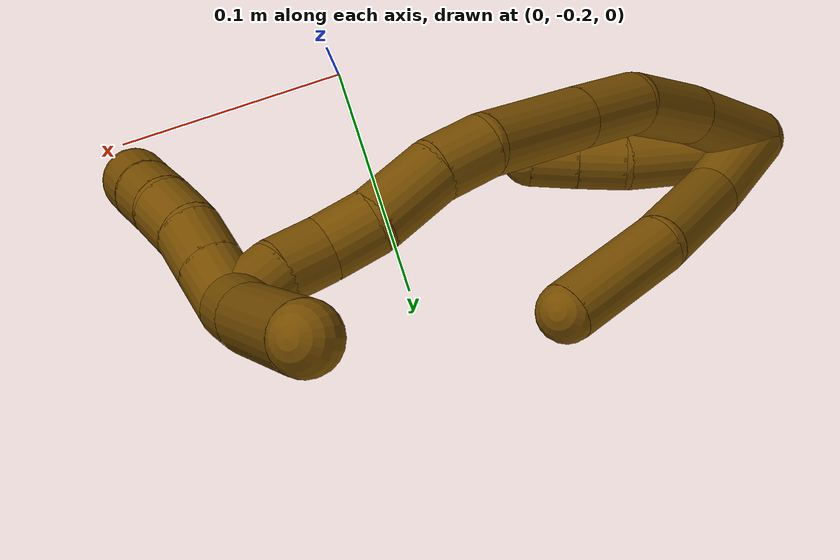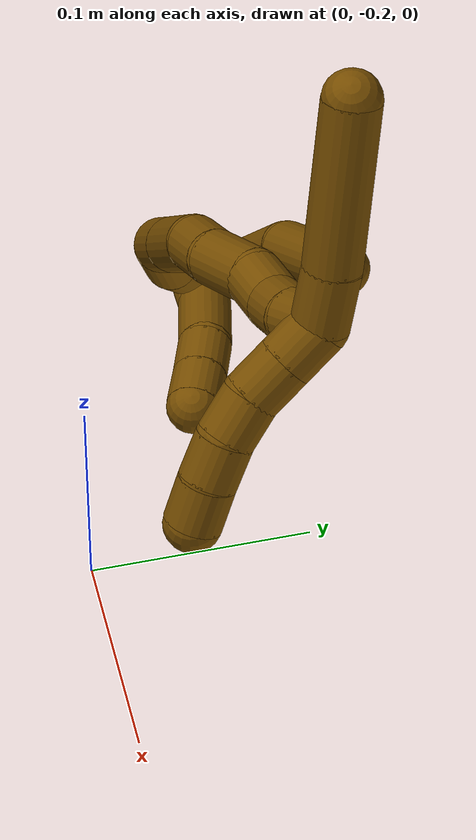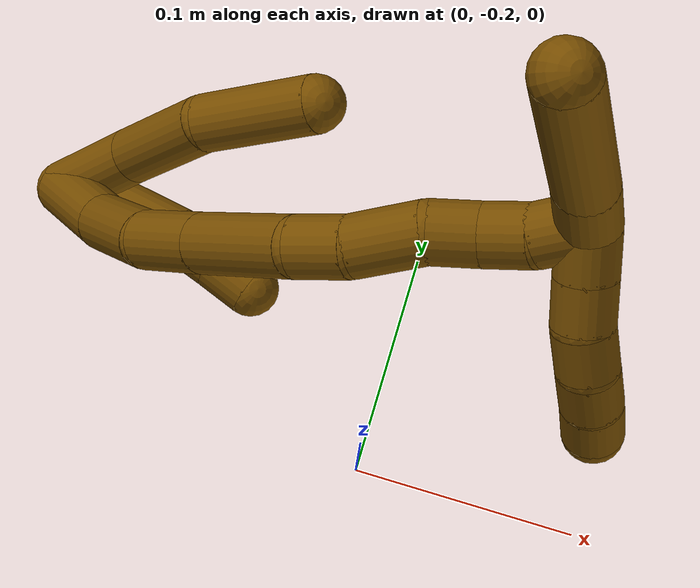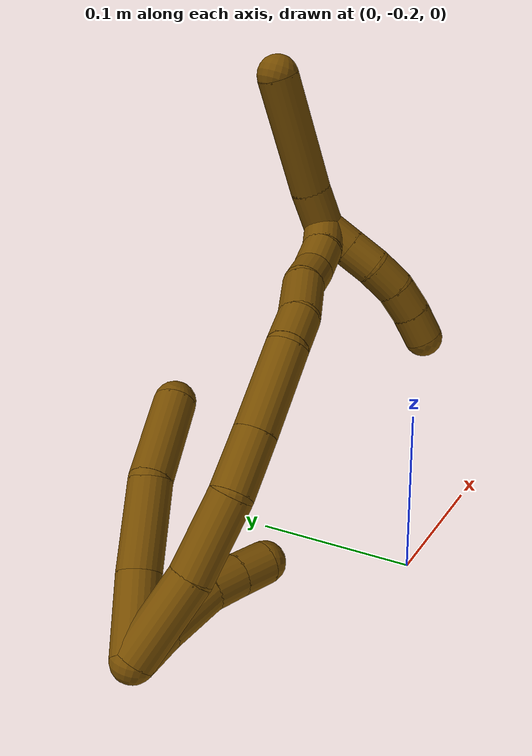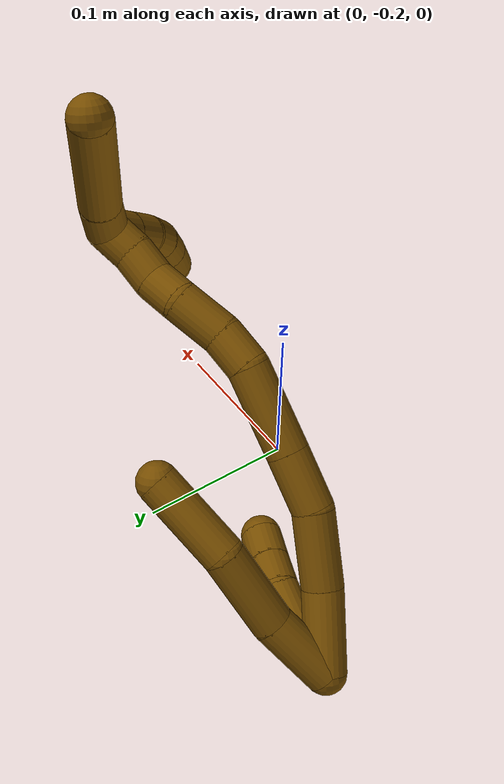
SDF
<sdf version="1.7">
 <world name="default">
  <model name="12">
   <static>0</static>
   <link name="12">
    <collision name="collision-cylinder-e_1_2_8">
     <pose>0.009699 0.010649 0.017175 -0.555036 0.44746 -0.129457</pose>
     <geometry><cylinder><radius>0.0125</radius><length>0.04483</length></cylinder></geometry>
     <surface>
      <friction><ode><mu>1.16</mu><mu2>1.16</mu2><slip1>0</slip1><slip2>0</slip2></ode></friction>
      <contact><ode><kp>1e+06</kp><kd>1</kd><max_vel>0</max_vel><min_depth>0.001</min_depth></ode></contact>
     </surface>
    </collision>
    <visual name="visual-cylinder-e_1_2_8">
     <pose>0.009699 0.010649 0.017175 -0.555036 0.44746 -0.129457</pose>
     <geometry><cylinder><radius>0.0125</radius><length>0.04483</length></cylinder></geometry>
     <material><ambient>0.466667 0.301961 0 1</ambient></material>
    </visual>
    <collision name="collision-cylinder-e_2_8_9">
     <pose>0.027686 0.030418 0.056621 -0.388631 0.331697 -0.065859</pose>
     <geometry><cylinder><radius>0.0125</radius><length>0.050907</length></cylinder></geometry>
     <surface>
      <friction><ode><mu>1.16</mu><mu2>1.16</mu2><slip1>0</slip1><slip2>0</slip2></ode></friction>
      <contact><ode><kp>1e+06</kp><kd>1</kd><max_vel>0</max_vel><min_depth>0.001</min_depth></ode></contact>
     </surface>
    </collision>
    <visual name="visual-cylinder-e_2_8_9">
     <pose>0.027686 0.030418 0.056621 -0.388631 0.331697 -0.065859</pose>
     <geometry><cylinder><radius>0.0125</radius><length>0.050907</length></cylinder></geometry>
     <material><ambient>0.466667 0.301961 0 1</ambient></material>
    </visual>
    <collision name="collision-cylinder-e_3_9_6">
     <pose>0.052862 0.048527 0.09813 -0.43715 0.671849 -0.154803</pose>
     <geometry><cylinder><radius>0.0125</radius><length>0.054263</length></cylinder></geometry>
     <surface>
      <friction><ode><mu>1.16</mu><mu2>1.16</mu2><slip1>0</slip1><slip2>0</slip2></ode></friction>
      <contact><ode><kp>1e+06</kp><kd>1</kd><max_vel>0</max_vel><min_depth>0.001</min_depth></ode></contact>
     </surface>
    </collision>
    <visual name="visual-cylinder-e_3_9_6">
     <pose>0.052862 0.048527 0.09813 -0.43715 0.671849 -0.154803</pose>
     <geometry><cylinder><radius>0.0125</radius><length>0.054263</length></cylinder></geometry>
     <material><ambient>0.466667 0.301961 0 1</ambient></material>
    </visual>
    <collision name="collision-cylinder-e_1_2_10">
     <pose>0.011035 0.000131 0.005116 -0.025667 1.13657 -0.01639</pose>
     <geometry><cylinder><radius>0.0125</radius><length>0.024328</length></cylinder></geometry>
     <surface>
      <friction><ode><mu>1.16</mu><mu2>1.16</mu2><slip1>0</slip1><slip2>0</slip2></ode></friction>
      <contact><ode><kp>1e+06</kp><kd>1</kd><max_vel>0</max_vel><min_depth>0.001</min_depth></ode></contact>
     </surface>
    </collision>
    <visual name="visual-cylinder-e_1_2_10">
     <pose>0.011035 0.000131 0.005116 -0.025667 1.13657 -0.01639</pose>
     <geometry><cylinder><radius>0.0125</radius><length>0.024328</length></cylinder></geometry>
     <material><ambient>0.466667 0.301961 0 1</ambient></material>
    </visual>
    <collision name="collision-cylinder-e_2_10_11">
     <pose>0.036499 -0.002702 0.019915 0.297075 0.95882 0.155271</pose>
     <geometry><cylinder><radius>0.0125</radius><length>0.035255</length></cylinder></geometry>
     <surface>
      <friction><ode><mu>1.16</mu><mu2>1.16</mu2><slip1>0</slip1><slip2>0</slip2></ode></friction>
      <contact><ode><kp>1e+06</kp><kd>1</kd><max_vel>0</max_vel><min_depth>0.001</min_depth></ode></contact>
     </surface>
    </collision>
    <visual name="visual-cylinder-e_2_10_11">
     <pose>0.036499 -0.002702 0.019915 0.297075 0.95882 0.155271</pose>
     <geometry><cylinder><radius>0.0125</radius><length>0.035255</length></cylinder></geometry>
     <material><ambient>0.466667 0.301961 0 1</ambient></material>
    </visual>
    <collision name="collision-cylinder-e_3_11_12">
     <pose>0.059667 -0.008897 0.033493 0.692463 1.04592 0.410114</pose>
     <geometry><cylinder><radius>0.0125</radius><length>0.020196</length></cylinder></geometry>
     <surface>
      <friction><ode><mu>1.16</mu><mu2>1.16</mu2><slip1>0</slip1><slip2>0</slip2></ode></friction>
      <contact><ode><kp>1e+06</kp><kd>1</kd><max_vel>0</max_vel><min_depth>0.001</min_depth></ode></contact>
     </surface>
    </collision>
    <visual name="visual-cylinder-e_3_11_12">
     <pose>0.059667 -0.008897 0.033493 0.692463 1.04592 0.410114</pose>
     <geometry><cylinder><radius>0.0125</radius><length>0.020196</length></cylinder></geometry>
     <material><ambient>0.466667 0.301961 0 1</ambient></material>
    </visual>
    <collision name="collision-cylinder-e_4_12_5">
     <pose>0.077092 -0.015613 0.041209 0.739484 1.03382 0.433708</pose>
     <geometry><cylinder><radius>0.0125</radius><length>0.02022</length></cylinder></geometry>
     <surface>
      <friction><ode><mu>1.16</mu><mu2>1.16</mu2><slip1>0</slip1><slip2>0</slip2></ode></friction>
      <contact><ode><kp>1e+06</kp><kd>1</kd><max_vel>0</max_vel><min_depth>0.001</min_depth></ode></contact>
     </surface>
    </collision>
    <visual name="visual-cylinder-e_4_12_5">
     <pose>0.077092 -0.015613 0.041209 0.739484 1.03382 0.433708</pose>
     <geometry><cylinder><radius>0.0125</radius><length>0.02022</length></cylinder></geometry>
     <material><ambient>0.466667 0.301961 0 1</ambient></material>
    </visual>
    <collision name="collision-cylinder-e_1_2_13">
     <pose>0.007124 -0.005679 0.023367 0.238399 0.288015 0.034732</pose>
     <geometry><cylinder><radius>0.0125</radius><length>0.05016</length></cylinder></geometry>
     <surface>
      <friction><ode><mu>1.16</mu><mu2>1.16</mu2><slip1>0</slip1><slip2>0</slip2></ode></friction>
      <contact><ode><kp>1e+06</kp><kd>1</kd><max_vel>0</max_vel><min_depth>0.001</min_depth></ode></contact>
     </surface>
    </collision>
    <visual name="visual-cylinder-e_1_2_13">
     <pose>0.007124 -0.005679 0.023367 0.238399 0.288015 0.034732</pose>
     <geometry><cylinder><radius>0.0125</radius><length>0.05016</length></cylinder></geometry>
     <material><ambient>0.466667 0.301961 0 1</ambient></material>
    </visual>
    <collision name="collision-cylinder-e_2_13_14">
     <pose>0.019593 -0.013329 0.069314 0.08709 0.231585 0.010136</pose>
     <geometry><cylinder><radius>0.0125</radius><length>0.046576</length></cylinder></geometry>
     <surface>
      <friction><ode><mu>1.16</mu><mu2>1.16</mu2><slip1>0</slip1><slip2>0</slip2></ode></friction>
      <contact><ode><kp>1e+06</kp><kd>1</kd><max_vel>0</max_vel><min_depth>0.001</min_depth></ode></contact>
     </surface>
    </collision>
    <visual name="visual-cylinder-e_2_13_14">
     <pose>0.019593 -0.013329 0.069314 0.08709 0.231585 0.010136</pose>
     <geometry><cylinder><radius>0.0125</radius><length>0.046576</length></cylinder></geometry>
     <material><ambient>0.466667 0.301961 0 1</ambient></material>
    </visual>
    <collision name="collision-cylinder-e_3_14_15">
     <pose>0.032824 -0.01328 0.107546 -0.128355 0.463421 -0.030324</pose>
     <geometry><cylinder><radius>0.0125</radius><length>0.035284</length></cylinder></geometry>
     <surface>
      <friction><ode><mu>1.16</mu><mu2>1.16</mu2><slip1>0</slip1><slip2>0</slip2></ode></friction>
      <contact><ode><kp>1e+06</kp><kd>1</kd><max_vel>0</max_vel><min_depth>0.001</min_depth></ode></contact>
     </surface>
    </collision>
    <visual name="visual-cylinder-e_3_14_15">
     <pose>0.032824 -0.01328 0.107546 -0.128355 0.463421 -0.030324</pose>
     <geometry><cylinder><radius>0.0125</radius><length>0.035284</length></cylinder></geometry>
     <material><ambient>0.466667 0.301961 0 1</ambient></material>
    </visual>
    <collision name="collision-cylinder-e_4_15_16">
     <pose>0.052473 -0.007862 0.146718 -0.143482 0.459609 -0.03362</pose>
     <geometry><cylinder><radius>0.0125</radius><length>0.053033</length></cylinder></geometry>
     <surface>
      <friction><ode><mu>1.16</mu><mu2>1.16</mu2><slip1>0</slip1><slip2>0</slip2></ode></friction>
      <contact><ode><kp>1e+06</kp><kd>1</kd><max_vel>0</max_vel><min_depth>0.001</min_depth></ode></contact>
     </surface>
    </collision>
    <visual name="visual-cylinder-e_4_15_16">
     <pose>0.052473 -0.007862 0.146718 -0.143482 0.459609 -0.03362</pose>
     <geometry><cylinder><radius>0.0125</radius><length>0.053033</length></cylinder></geometry>
     <material><ambient>0.466667 0.301961 0 1</ambient></material>
    </visual>
    <collision name="collision-cylinder-e_5_16_17">
     <pose>0.072287 -0.001773 0.178235 -0.324638 0.762032 -0.131014</pose>
     <geometry><cylinder><radius>0.0125</radius><length>0.023325</length></cylinder></geometry>
     <surface>
      <friction><ode><mu>1.16</mu><mu2>1.16</mu2><slip1>0</slip1><slip2>0</slip2></ode></friction>
      <contact><ode><kp>1e+06</kp><kd>1</kd><max_vel>0</max_vel><min_depth>0.001</min_depth></ode></contact>
     </surface>
    </collision>
    <visual name="visual-cylinder-e_5_16_17">
     <pose>0.072287 -0.001773 0.178235 -0.324638 0.762032 -0.131014</pose>
     <geometry><cylinder><radius>0.0125</radius><length>0.023325</length></cylinder></geometry>
     <material><ambient>0.466667 0.301961 0 1</ambient></material>
    </visual>
    <collision name="collision-cylinder-e_6_17_18">
     <pose>0.090913 0.007316 0.195195 -0.619899 0.765079 -0.256317</pose>
     <geometry><cylinder><radius>0.0125</radius><length>0.030536</length></cylinder></geometry>
     <surface>
      <friction><ode><mu>1.16</mu><mu2>1.16</mu2><slip1>0</slip1><slip2>0</slip2></ode></friction>
      <contact><ode><kp>1e+06</kp><kd>1</kd><max_vel>0</max_vel><min_depth>0.001</min_depth></ode></contact>
     </surface>
    </collision>
    <visual name="visual-cylinder-e_6_17_18">
     <pose>0.090913 0.007316 0.195195 -0.619899 0.765079 -0.256317</pose>
     <geometry><cylinder><radius>0.0125</radius><length>0.030536</length></cylinder></geometry>
     <material><ambient>0.466667 0.301961 0 1</ambient></material>
    </visual>
    <collision name="collision-cylinder-e_7_18_19">
     <pose>0.110378 0.016081 0.208706 -0.479892 1.04771 -0.280816</pose>
     <geometry><cylinder><radius>0.0125</radius><length>0.020524</length></cylinder></geometry>
     <surface>
      <friction><ode><mu>1.16</mu><mu2>1.16</mu2><slip1>0</slip1><slip2>0</slip2></ode></friction>
      <contact><ode><kp>1e+06</kp><kd>1</kd><max_vel>0</max_vel><min_depth>0.001</min_depth></ode></contact>
     </surface>
    </collision>
    <visual name="visual-cylinder-e_7_18_19">
     <pose>0.110378 0.016081 0.208706 -0.479892 1.04771 -0.280816</pose>
     <geometry><cylinder><radius>0.0125</radius><length>0.020524</length></cylinder></geometry>
     <material><ambient>0.466667 0.301961 0 1</ambient></material>
    </visual>
    <collision name="collision-cylinder-e_8_19_20">
     <pose>0.126272 0.020585 0.220305 -0.294239 0.760119 -0.118261</pose>
     <geometry><cylinder><radius>0.0125</radius><length>0.020333</length></cylinder></geometry>
     <surface>
      <friction><ode><mu>1.16</mu><mu2>1.16</mu2><slip1>0</slip1><slip2>0</slip2></ode></friction>
      <contact><ode><kp>1e+06</kp><kd>1</kd><max_vel>0</max_vel><min_depth>0.001</min_depth></ode></contact>
     </surface>
    </collision>
    <visual name="visual-cylinder-e_8_19_20">
     <pose>0.126272 0.020585 0.220305 -0.294239 0.760119 -0.118261</pose>
     <geometry><cylinder><radius>0.0125</radius><length>0.020333</length></cylinder></geometry>
     <material><ambient>0.466667 0.301961 0 1</ambient></material>
    </visual>
    <collision name="collision-cylinder-e_9_20_1">
     <pose>0.139608 0.026928 0.23403 -0.562353 0.676308 -0.202445</pose>
     <geometry><cylinder><radius>0.0125</radius><length>0.020229</length></cylinder></geometry>
     <surface>
      <friction><ode><mu>1.16</mu><mu2>1.16</mu2><slip1>0</slip1><slip2>0</slip2></ode></friction>
      <contact><ode><kp>1e+06</kp><kd>1</kd><max_vel>0</max_vel><min_depth>0.001</min_depth></ode></contact>
     </surface>
    </collision>
    <visual name="visual-cylinder-e_9_20_1">
     <pose>0.139608 0.026928 0.23403 -0.562353 0.676308 -0.202445</pose>
     <geometry><cylinder><radius>0.0125</radius><length>0.020229</length></cylinder></geometry>
     <material><ambient>0.466667 0.301961 0 1</ambient></material>
    </visual>
    <collision name="collision-cylinder-e_1_1_21">
     <pose>0.138723 0.035985 0.250677 -0.452745 -0.576865 0.136463</pose>
     <geometry><cylinder><radius>0.0125</radius><length>0.026463</length></cylinder></geometry>
     <surface>
      <friction><ode><mu>1.16</mu><mu2>1.16</mu2><slip1>0</slip1><slip2>0</slip2></ode></friction>
      <contact><ode><kp>1e+06</kp><kd>1</kd><max_vel>0</max_vel><min_depth>0.001</min_depth></ode></contact>
     </surface>
    </collision>
    <visual name="visual-cylinder-e_1_1_21">
     <pose>0.138723 0.035985 0.250677 -0.452745 -0.576865 0.136463</pose>
     <geometry><cylinder><radius>0.0125</radius><length>0.026463</length></cylinder></geometry>
     <material><ambient>0.466667 0.301961 0 1</ambient></material>
    </visual>
    <collision name="collision-cylinder-e_2_21_4">
     <pose>0.11052 0.051398 0.288933 -0.357401 -0.607453 0.113105</pose>
     <geometry><cylinder><radius>0.0125</radius><length>0.073537</length></cylinder></geometry>
     <surface>
      <friction><ode><mu>1.16</mu><mu2>1.16</mu2><slip1>0</slip1><slip2>0</slip2></ode></friction>
      <contact><ode><kp>1e+06</kp><kd>1</kd><max_vel>0</max_vel><min_depth>0.001</min_depth></ode></contact>
     </surface>
    </collision>
    <visual name="visual-cylinder-e_2_21_4">
     <pose>0.11052 0.051398 0.288933 -0.357401 -0.607453 0.113105</pose>
     <geometry><cylinder><radius>0.0125</radius><length>0.073537</length></cylinder></geometry>
     <material><ambient>0.466667 0.301961 0 1</ambient></material>
    </visual>
    <collision name="collision-cylinder-e_1_1_22">
     <pose>0.149933 0.022766 0.23696 1.99153 0.410905 0.622215</pose>
     <geometry><cylinder><radius>0.0125</radius><length>0.02</length></cylinder></geometry>
     <surface>
      <friction><ode><mu>1.16</mu><mu2>1.16</mu2><slip1>0</slip1><slip2>0</slip2></ode></friction>
      <contact><ode><kp>1e+06</kp><kd>1</kd><max_vel>0</max_vel><min_depth>0.001</min_depth></ode></contact>
     </surface>
    </collision>
    <visual name="visual-cylinder-e_1_1_22">
     <pose>0.149933 0.022766 0.23696 1.99153 0.410905 0.622215</pose>
     <geometry><cylinder><radius>0.0125</radius><length>0.02</length></cylinder></geometry>
     <material><ambient>0.466667 0.301961 0 1</ambient></material>
    </visual>
    <collision name="collision-cylinder-e_2_22_23">
     <pose>0.157899 0.006014 0.229481 1.98982 0.408318 0.617355</pose>
     <geometry><cylinder><radius>0.0125</radius><length>0.02</length></cylinder></geometry>
     <surface>
      <friction><ode><mu>1.16</mu><mu2>1.16</mu2><slip1>0</slip1><slip2>0</slip2></ode></friction>
      <contact><ode><kp>1e+06</kp><kd>1</kd><max_vel>0</max_vel><min_depth>0.001</min_depth></ode></contact>
     </surface>
    </collision>
    <visual name="visual-cylinder-e_2_22_23">
     <pose>0.157899 0.006014 0.229481 1.98982 0.408318 0.617355</pose>
     <geometry><cylinder><radius>0.0125</radius><length>0.02</length></cylinder></geometry>
     <material><ambient>0.466667 0.301961 0 1</ambient></material>
    </visual>
    <collision name="collision-cylinder-e_3_23_24">
     <pose>0.167407 -0.009412 0.221303 2.1338 0.586845 1.00259</pose>
     <geometry><cylinder><radius>0.0125</radius><length>0.02</length></cylinder></geometry>
     <surface>
      <friction><ode><mu>1.16</mu><mu2>1.16</mu2><slip1>0</slip1><slip2>0</slip2></ode></friction>
      <contact><ode><kp>1e+06</kp><kd>1</kd><max_vel>0</max_vel><min_depth>0.001</min_depth></ode></contact>
     </surface>
    </collision>
    <visual name="visual-cylinder-e_3_23_24">
     <pose>0.167407 -0.009412 0.221303 2.1338 0.586845 1.00259</pose>
     <geometry><cylinder><radius>0.0125</radius><length>0.02</length></cylinder></geometry>
     <material><ambient>0.466667 0.301961 0 1</ambient></material>
    </visual>
    <collision name="collision-cylinder-e_4_24_25">
     <pose>0.178623 -0.022003 0.21078 2.40162 0.603978 1.35338</pose>
     <geometry><cylinder><radius>0.0125</radius><length>0.02</length></cylinder></geometry>
     <surface>
      <friction><ode><mu>1.16</mu><mu2>1.16</mu2><slip1>0</slip1><slip2>0</slip2></ode></friction>
      <contact><ode><kp>1e+06</kp><kd>1</kd><max_vel>0</max_vel><min_depth>0.001</min_depth></ode></contact>
     </surface>
    </collision>
    <visual name="visual-cylinder-e_4_24_25">
     <pose>0.178623 -0.022003 0.21078 2.40162 0.603978 1.35338</pose>
     <geometry><cylinder><radius>0.0125</radius><length>0.02</length></cylinder></geometry>
     <material><ambient>0.466667 0.301961 0 1</ambient></material>
    </visual>
    <collision name="collision-cylinder-e_5_25_3">
     <pose>0.189616 -0.032463 0.197798 2.52334 0.560233 1.4665</pose>
     <geometry><cylinder><radius>0.0125</radius><length>0.02</length></cylinder></geometry>
     <surface>
      <friction><ode><mu>1.16</mu><mu2>1.16</mu2><slip1>0</slip1><slip2>0</slip2></ode></friction>
      <contact><ode><kp>1e+06</kp><kd>1</kd><max_vel>0</max_vel><min_depth>0.001</min_depth></ode></contact>
     </surface>
    </collision>
    <visual name="visual-cylinder-e_5_25_3">
     <pose>0.189616 -0.032463 0.197798 2.52334 0.560233 1.4665</pose>
     <geometry><cylinder><radius>0.0125</radius><length>0.02</length></cylinder></geometry>
     <material><ambient>0.466667 0.301961 0 1</ambient></material>
    </visual>
    <collision name="collision-sphere-3">
     <pose>0.19493 -0.037373 0.190895 0 -0 0</pose>
     <geometry><sphere><radius>0.0125</radius></sphere></geometry>
     <surface>
      <friction><ode><mu>1.16</mu><mu2>1.16</mu2><slip1>0</slip1><slip2>0</slip2></ode></friction>
      <contact><ode><kp>1e+06</kp><kd>1</kd><max_vel>0</max_vel><min_depth>0.001</min_depth></ode></contact>
     </surface>
    </collision>
    <visual name="visual-sphere-3">
     <pose>0.19493 -0.037373 0.190895 0 -0 0</pose>
     <geometry><sphere><radius>0.0125</radius></sphere></geometry>
     <material><ambient>0.466667 0.301961 0 1</ambient></material>
    </visual>
    <collision name="collision-sphere-25">
     <pose>0.184302 -0.027553 0.204702 0 -0 0</pose>
     <geometry><sphere><radius>0.0125</radius></sphere></geometry>
     <surface>
      <friction><ode><mu>1.16</mu><mu2>1.16</mu2><slip1>0</slip1><slip2>0</slip2></ode></friction>
      <contact><ode><kp>1e+06</kp><kd>1</kd><max_vel>0</max_vel><min_depth>0.001</min_depth></ode></contact>
     </surface>
    </collision>
    <visual name="visual-sphere-25">
     <pose>0.184302 -0.027553 0.204702 0 -0 0</pose>
     <geometry><sphere><radius>0.0125</radius></sphere></geometry>
     <material><ambient>0.466667 0.301961 0 1</ambient></material>
    </visual>
    <collision name="collision-sphere-24">
     <pose>0.172944 -0.016454 0.216858 0 -0 0</pose>
     <geometry><sphere><radius>0.0125</radius></sphere></geometry>
     <surface>
      <friction><ode><mu>1.16</mu><mu2>1.16</mu2><slip1>0</slip1><slip2>0</slip2></ode></friction>
      <contact><ode><kp>1e+06</kp><kd>1</kd><max_vel>0</max_vel><min_depth>0.001</min_depth></ode></contact>
     </surface>
    </collision>
    <visual name="visual-sphere-24">
     <pose>0.172944 -0.016454 0.216858 0 -0 0</pose>
     <geometry><sphere><radius>0.0125</radius></sphere></geometry>
     <material><ambient>0.466667 0.301961 0 1</ambient></material>
    </visual>
    <collision name="collision-sphere-23">
     <pose>0.161869 -0.00237 0.225747 0 -0 0</pose>
     <geometry><sphere><radius>0.0125</radius></sphere></geometry>
     <surface>
      <friction><ode><mu>1.16</mu><mu2>1.16</mu2><slip1>0</slip1><slip2>0</slip2></ode></friction>
      <contact><ode><kp>1e+06</kp><kd>1</kd><max_vel>0</max_vel><min_depth>0.001</min_depth></ode></contact>
     </surface>
    </collision>
    <visual name="visual-sphere-23">
     <pose>0.161869 -0.00237 0.225747 0 -0 0</pose>
     <geometry><sphere><radius>0.0125</radius></sphere></geometry>
     <material><ambient>0.466667 0.301961 0 1</ambient></material>
    </visual>
    <collision name="collision-sphere-22">
     <pose>0.153928 0.014398 0.233215 0 -0 0</pose>
     <geometry><sphere><radius>0.0125</radius></sphere></geometry>
     <surface>
      <friction><ode><mu>1.16</mu><mu2>1.16</mu2><slip1>0</slip1><slip2>0</slip2></ode></friction>
      <contact><ode><kp>1e+06</kp><kd>1</kd><max_vel>0</max_vel><min_depth>0.001</min_depth></ode></contact>
     </surface>
    </collision>
    <visual name="visual-sphere-22">
     <pose>0.153928 0.014398 0.233215 0 -0 0</pose>
     <geometry><sphere><radius>0.0125</radius></sphere></geometry>
     <material><ambient>0.466667 0.301961 0 1</ambient></material>
    </visual>
    <collision name="collision-sphere-4">
     <pose>0.089533 0.06196 0.317216 0 -0 0</pose>
     <geometry><sphere><radius>0.0125</radius></sphere></geometry>
     <surface>
      <friction><ode><mu>1.16</mu><mu2>1.16</mu2><slip1>0</slip1><slip2>0</slip2></ode></friction>
      <contact><ode><kp>1e+06</kp><kd>1</kd><max_vel>0</max_vel><min_depth>0.001</min_depth></ode></contact>
     </surface>
    </collision>
    <visual name="visual-sphere-4">
     <pose>0.089533 0.06196 0.317216 0 -0 0</pose>
     <geometry><sphere><radius>0.0125</radius></sphere></geometry>
     <material><ambient>0.466667 0.301961 0 1</ambient></material>
    </visual>
    <collision name="collision-sphere-21">
     <pose>0.131506 0.040836 0.26065 0 -0 0</pose>
     <geometry><sphere><radius>0.0125</radius></sphere></geometry>
     <surface>
      <friction><ode><mu>1.16</mu><mu2>1.16</mu2><slip1>0</slip1><slip2>0</slip2></ode></friction>
      <contact><ode><kp>1e+06</kp><kd>1</kd><max_vel>0</max_vel><min_depth>0.001</min_depth></ode></contact>
     </surface>
    </collision>
    <visual name="visual-sphere-21">
     <pose>0.131506 0.040836 0.26065 0 -0 0</pose>
     <geometry><sphere><radius>0.0125</radius></sphere></geometry>
     <material><ambient>0.466667 0.301961 0 1</ambient></material>
    </visual>
    <collision name="collision-sphere-1">
     <pose>0.145939 0.031134 0.240704 0 -0 0</pose>
     <geometry><sphere><radius>0.0125</radius></sphere></geometry>
     <surface>
      <friction><ode><mu>1.16</mu><mu2>1.16</mu2><slip1>0</slip1><slip2>0</slip2></ode></friction>
      <contact><ode><kp>1e+06</kp><kd>1</kd><max_vel>0</max_vel><min_depth>0.001</min_depth></ode></contact>
     </surface>
    </collision>
    <visual name="visual-sphere-1">
     <pose>0.145939 0.031134 0.240704 0 -0 0</pose>
     <geometry><sphere><radius>0.0125</radius></sphere></geometry>
     <material><ambient>0.466667 0.301961 0 1</ambient></material>
    </visual>
    <collision name="collision-sphere-11">
     <pose>0.050928 -0.005666 0.029598 0 -0 0</pose>
     <geometry><sphere><radius>0.0125</radius></sphere></geometry>
     <surface>
      <friction><ode><mu>1.16</mu><mu2>1.16</mu2><slip1>0</slip1><slip2>0</slip2></ode></friction>
      <contact><ode><kp>1e+06</kp><kd>1</kd><max_vel>0</max_vel><min_depth>0.001</min_depth></ode></contact>
     </surface>
    </collision>
    <visual name="visual-sphere-11">
     <pose>0.050928 -0.005666 0.029598 0 -0 0</pose>
     <geometry><sphere><radius>0.0125</radius></sphere></geometry>
     <material><ambient>0.466667 0.301961 0 1</ambient></material>
    </visual>
    <collision name="collision-sphere-10">
     <pose>0.022071 0.000263 0.010232 0 -0 0</pose>
     <geometry><sphere><radius>0.0125</radius></sphere></geometry>
     <surface>
      <friction><ode><mu>1.16</mu><mu2>1.16</mu2><slip1>0</slip1><slip2>0</slip2></ode></friction>
      <contact><ode><kp>1e+06</kp><kd>1</kd><max_vel>0</max_vel><min_depth>0.001</min_depth></ode></contact>
     </surface>
    </collision>
    <visual name="visual-sphere-10">
     <pose>0.022071 0.000263 0.010232 0 -0 0</pose>
     <geometry><sphere><radius>0.0125</radius></sphere></geometry>
     <material><ambient>0.466667 0.301961 0 1</ambient></material>
    </visual>
    <collision name="collision-sphere-6">
     <pose>0.06975 0.057517 0.117368 0 -0 0</pose>
     <geometry><sphere><radius>0.0125</radius></sphere></geometry>
     <surface>
      <friction><ode><mu>1.16</mu><mu2>1.16</mu2><slip1>0</slip1><slip2>0</slip2></ode></friction>
      <contact><ode><kp>1e+06</kp><kd>1</kd><max_vel>0</max_vel><min_depth>0.001</min_depth></ode></contact>
     </surface>
    </collision>
    <visual name="visual-sphere-6">
     <pose>0.06975 0.057517 0.117368 0 -0 0</pose>
     <geometry><sphere><radius>0.0125</radius></sphere></geometry>
     <material><ambient>0.466667 0.301961 0 1</ambient></material>
    </visual>
    <collision name="collision-sphere-9">
     <pose>0.035975 0.039537 0.078892 0 -0 0</pose>
     <geometry><sphere><radius>0.0125</radius></sphere></geometry>
     <surface>
      <friction><ode><mu>1.16</mu><mu2>1.16</mu2><slip1>0</slip1><slip2>0</slip2></ode></friction>
      <contact><ode><kp>1e+06</kp><kd>1</kd><max_vel>0</max_vel><min_depth>0.001</min_depth></ode></contact>
     </surface>
    </collision>
    <visual name="visual-sphere-9">
     <pose>0.035975 0.039537 0.078892 0 -0 0</pose>
     <geometry><sphere><radius>0.0125</radius></sphere></geometry>
     <material><ambient>0.466667 0.301961 0 1</ambient></material>
    </visual>
    <collision name="collision-sphere-2">
     <geometry><sphere><radius>0.0125</radius></sphere></geometry>
     <surface>
      <friction><ode><mu>1.16</mu><mu2>1.16</mu2><slip1>0</slip1><slip2>0</slip2></ode></friction>
      <contact><ode><kp>1e+06</kp><kd>1</kd><max_vel>0</max_vel><min_depth>0.001</min_depth></ode></contact>
     </surface>
    </collision>
    <visual name="visual-sphere-2">
     <geometry><sphere><radius>0.0125</radius></sphere></geometry>
     <material><ambient>0.466667 0.301961 0 1</ambient></material>
    </visual>
    <collision name="collision-sphere-19">
     <pose>0.119268 0.018448 0.213254 0 -0 0</pose>
     <geometry><sphere><radius>0.0125</radius></sphere></geometry>
     <surface>
      <friction><ode><mu>1.16</mu><mu2>1.16</mu2><slip1>0</slip1><slip2>0</slip2></ode></friction>
      <contact><ode><kp>1e+06</kp><kd>1</kd><max_vel>0</max_vel><min_depth>0.001</min_depth></ode></contact>
     </surface>
    </collision>
    <visual name="visual-sphere-19">
     <pose>0.119268 0.018448 0.213254 0 -0 0</pose>
     <geometry><sphere><radius>0.0125</radius></sphere></geometry>
     <material><ambient>0.466667 0.301961 0 1</ambient></material>
    </visual>
    <collision name="collision-sphere-8">
     <pose>0.019397 0.021299 0.034349 0 -0 0</pose>
     <geometry><sphere><radius>0.0125</radius></sphere></geometry>
     <surface>
      <friction><ode><mu>1.16</mu><mu2>1.16</mu2><slip1>0</slip1><slip2>0</slip2></ode></friction>
      <contact><ode><kp>1e+06</kp><kd>1</kd><max_vel>0</max_vel><min_depth>0.001</min_depth></ode></contact>
     </surface>
    </collision>
    <visual name="visual-sphere-8">
     <pose>0.019397 0.021299 0.034349 0 -0 0</pose>
     <geometry><sphere><radius>0.0125</radius></sphere></geometry>
     <material><ambient>0.466667 0.301961 0 1</ambient></material>
    </visual>
    <collision name="collision-sphere-12">
     <pose>0.068405 -0.012127 0.037388 0 -0 0</pose>
     <geometry><sphere><radius>0.0125</radius></sphere></geometry>
     <surface>
      <friction><ode><mu>1.16</mu><mu2>1.16</mu2><slip1>0</slip1><slip2>0</slip2></ode></friction>
      <contact><ode><kp>1e+06</kp><kd>1</kd><max_vel>0</max_vel><min_depth>0.001</min_depth></ode></contact>
     </surface>
    </collision>
    <visual name="visual-sphere-12">
     <pose>0.068405 -0.012127 0.037388 0 -0 0</pose>
     <geometry><sphere><radius>0.0125</radius></sphere></geometry>
     <material><ambient>0.466667 0.301961 0 1</ambient></material>
    </visual>
    <collision name="collision-sphere-5">
     <pose>0.085779 -0.019098 0.04503 0 -0 0</pose>
     <geometry><sphere><radius>0.0125</radius></sphere></geometry>
     <surface>
      <friction><ode><mu>1.16</mu><mu2>1.16</mu2><slip1>0</slip1><slip2>0</slip2></ode></friction>
      <contact><ode><kp>1e+06</kp><kd>1</kd><max_vel>0</max_vel><min_depth>0.001</min_depth></ode></contact>
     </surface>
    </collision>
    <visual name="visual-sphere-5">
     <pose>0.085779 -0.019098 0.04503 0 -0 0</pose>
     <geometry><sphere><radius>0.0125</radius></sphere></geometry>
     <material><ambient>0.466667 0.301961 0 1</ambient></material>
    </visual>
    <collision name="collision-sphere-13">
     <pose>0.014248 -0.011357 0.046733 0 -0 0</pose>
     <geometry><sphere><radius>0.0125</radius></sphere></geometry>
     <surface>
      <friction><ode><mu>1.16</mu><mu2>1.16</mu2><slip1>0</slip1><slip2>0</slip2></ode></friction>
      <contact><ode><kp>1e+06</kp><kd>1</kd><max_vel>0</max_vel><min_depth>0.001</min_depth></ode></contact>
     </surface>
    </collision>
    <visual name="visual-sphere-13">
     <pose>0.014248 -0.011357 0.046733 0 -0 0</pose>
     <geometry><sphere><radius>0.0125</radius></sphere></geometry>
     <material><ambient>0.466667 0.301961 0 1</ambient></material>
    </visual>
    <collision name="collision-sphere-14">
     <pose>0.024938 -0.0153 0.091895 0 -0 0</pose>
     <geometry><sphere><radius>0.0125</radius></sphere></geometry>
     <surface>
      <friction><ode><mu>1.16</mu><mu2>1.16</mu2><slip1>0</slip1><slip2>0</slip2></ode></friction>
      <contact><ode><kp>1e+06</kp><kd>1</kd><max_vel>0</max_vel><min_depth>0.001</min_depth></ode></contact>
     </surface>
    </collision>
    <visual name="visual-sphere-14">
     <pose>0.024938 -0.0153 0.091895 0 -0 0</pose>
     <geometry><sphere><radius>0.0125</radius></sphere></geometry>
     <material><ambient>0.466667 0.301961 0 1</ambient></material>
    </visual>
    <collision name="collision-sphere-15">
     <pose>0.04071 -0.01126 0.123197 0 -0 0</pose>
     <geometry><sphere><radius>0.0125</radius></sphere></geometry>
     <surface>
      <friction><ode><mu>1.16</mu><mu2>1.16</mu2><slip1>0</slip1><slip2>0</slip2></ode></friction>
      <contact><ode><kp>1e+06</kp><kd>1</kd><max_vel>0</max_vel><min_depth>0.001</min_depth></ode></contact>
     </surface>
    </collision>
    <visual name="visual-sphere-15">
     <pose>0.04071 -0.01126 0.123197 0 -0 0</pose>
     <geometry><sphere><radius>0.0125</radius></sphere></geometry>
     <material><ambient>0.466667 0.301961 0 1</ambient></material>
    </visual>
    <collision name="collision-sphere-16">
     <pose>0.064236 -0.004464 0.170238 0 -0 0</pose>
     <geometry><sphere><radius>0.0125</radius></sphere></geometry>
     <surface>
      <friction><ode><mu>1.16</mu><mu2>1.16</mu2><slip1>0</slip1><slip2>0</slip2></ode></friction>
      <contact><ode><kp>1e+06</kp><kd>1</kd><max_vel>0</max_vel><min_depth>0.001</min_depth></ode></contact>
     </surface>
    </collision>
    <visual name="visual-sphere-16">
     <pose>0.064236 -0.004464 0.170238 0 -0 0</pose>
     <geometry><sphere><radius>0.0125</radius></sphere></geometry>
     <material><ambient>0.466667 0.301961 0 1</ambient></material>
    </visual>
    <collision name="collision-sphere-17">
     <pose>0.080339 0.000918 0.186231 0 -0 0</pose>
     <geometry><sphere><radius>0.0125</radius></sphere></geometry>
     <surface>
      <friction><ode><mu>1.16</mu><mu2>1.16</mu2><slip1>0</slip1><slip2>0</slip2></ode></friction>
      <contact><ode><kp>1e+06</kp><kd>1</kd><max_vel>0</max_vel><min_depth>0.001</min_depth></ode></contact>
     </surface>
    </collision>
    <visual name="visual-sphere-17">
     <pose>0.080339 0.000918 0.186231 0 -0 0</pose>
     <geometry><sphere><radius>0.0125</radius></sphere></geometry>
     <material><ambient>0.466667 0.301961 0 1</ambient></material>
    </visual>
    <collision name="collision-sphere-18">
     <pose>0.101488 0.013715 0.204159 0 -0 0</pose>
     <geometry><sphere><radius>0.0125</radius></sphere></geometry>
     <surface>
      <friction><ode><mu>1.16</mu><mu2>1.16</mu2><slip1>0</slip1><slip2>0</slip2></ode></friction>
      <contact><ode><kp>1e+06</kp><kd>1</kd><max_vel>0</max_vel><min_depth>0.001</min_depth></ode></contact>
     </surface>
    </collision>
    <visual name="visual-sphere-18">
     <pose>0.101488 0.013715 0.204159 0 -0 0</pose>
     <geometry><sphere><radius>0.0125</radius></sphere></geometry>
     <material><ambient>0.466667 0.301961 0 1</ambient></material>
    </visual>
    <collision name="collision-sphere-20">
     <pose>0.133277 0.022722 0.227357 0 -0 0</pose>
     <geometry><sphere><radius>0.0125</radius></sphere></geometry>
     <surface>
      <friction><ode><mu>1.16</mu><mu2>1.16</mu2><slip1>0</slip1><slip2>0</slip2></ode></friction>
      <contact><ode><kp>1e+06</kp><kd>1</kd><max_vel>0</max_vel><min_depth>0.001</min_depth></ode></contact>
     </surface>
    </collision>
    <visual name="visual-sphere-20">
     <pose>0.133277 0.022722 0.227357 0 -0 0</pose>
     <geometry><sphere><radius>0.0125</radius></sphere></geometry>
     <material><ambient>0.466667 0.301961 0 1</ambient></material>
    </visual>
    <inertial>
     <pose>0.073373 0.010381 0.134282 0 -0 0</pose>
     <mass>0.75</mass>
     <inertia>
      <ixx>0.000146</ixx>
      <ixy>0</ixy>
      <ixz>0</ixz>
      <iyy>0.00014</iyy>
      <iyz>0</iyz>
      <izz>-1.7e-05</izz>
     </inertia>
    </inertial>
   </link>
   <pose>-0.163295 -0.116389 0.012117 0.151003 0.349077 0.040452</pose>
  </model>
 </world>
</sdf>
